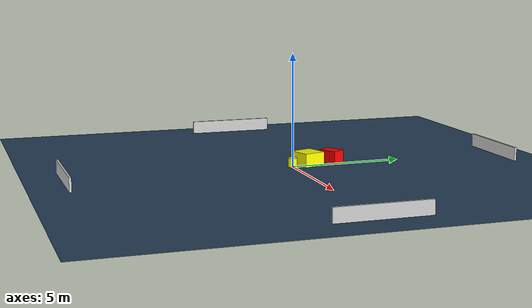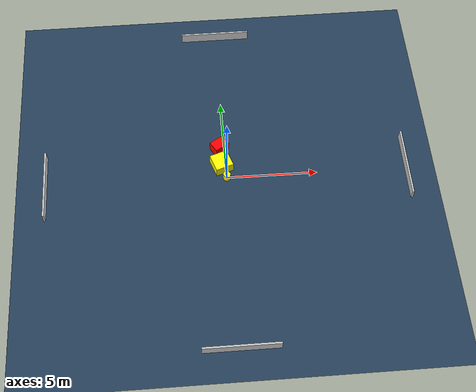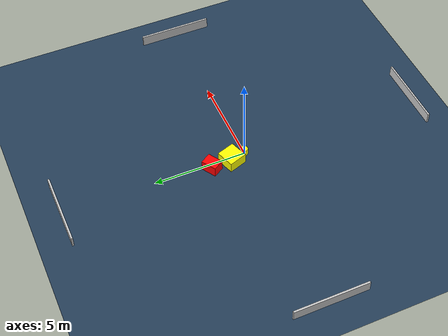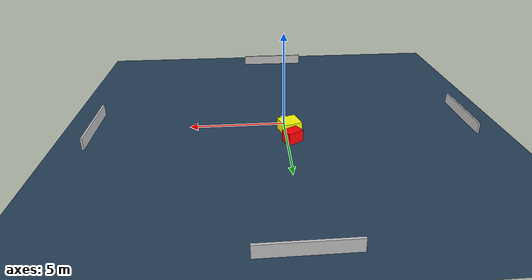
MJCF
<?xml version="1.0" ?>
<mujoco model="generated_environment">
  <option timestep="0.01" integrator="RK4" cone="elliptic"/>
  <default>
    <geom density="1"/>
  </default>
  <asset>
    <texture builtin="gradient" height="3072" name="skybox" rgb1="0.3 0.5 0.7" rgb2="0 0 0" type="skybox" width="512"/>
    <texture builtin="checker" height="300" name="groundplane" rgb1="0.2 0.3 0.4" rgb2="0.1 0.2 0.3" type="2d" width="300"/>
    <material name="groundplane" reflectance="0.2" texrepeat="5 5" texture="groundplane"/>
  </asset>
  <worldbody>
    <light dir="0 0 -1" directional="true" pos="0 0 1.5"/>
    <geom condim="3" friction="0.5 0.005 0.001" material="groundplane" name="floor" pos="0 0 0" size="0 0 0.05" type="plane"/>
    <body name="walls">
      <geom name="wall_1" condim="4" pos="-10.0 0.0 0.3" rgba="0.800000011920929 0.800000011920929 0.800000011920929 1.0" size="0.05 2.0 0.3" type="box"/>
      <geom name="wall_2" condim="4" pos="10.0 0.0 0.3" rgba="0.800000011920929 0.800000011920929 0.800000011920929 1.0" size="0.05 2.0 0.3" type="box"/>
      <geom name="wall_3" condim="4" pos="0.0 -10.0 0.3" rgba="0.800000011920929 0.800000011920929 0.800000011920929 1.0" size="2.0 0.05 0.3" type="box"/>
      <geom name="wall_4" condim="4" pos="0.0 10.0 0.3" rgba="0.800000011920929 0.800000011920929 0.800000011920929 1.0" size="2.0 0.05 0.3" type="box"/>
    </body>
    <body name="robot">
      <joint name="joint_x" type="slide" pos="0 0 0" axis="1 0 0"/>
      <joint name="joint_y" type="slide" pos="0 0 0" axis="0 1 0"/>
      <geom name="robot" type="cylinder" pos="0.0 0.0 0.2" size="0.2 0.2 0.0" mass="5.0" friction="1.0 0.005 0.0001" condim="4" rgba="1.0 1.0 0.0 1.0"/>
    </body>
    <body name="obstacle_1_movable">
      <geom name="obstacle_1_movable" condim="4" pos="-0.23681922283856646 0.8100517410855328 0.3" euler="0 0 108.65598648705627" friction="0.0 0.005 0.001" rgba="1.0 1.0 0.0 1.0" size="0.5020506997287375 0.5065368838347863 0.3" type="box" mass="0.1"/>
      <joint type="free"/>
    </body>
    <body name="obstacle_2_static">
      <geom name="obstacle_2_static" condim="4" pos="-0.28640804725014746 1.9451049858491525 0.3" euler="0 0 121.83614173911674" friction="0.0 0.005 0.001" rgba="1.0 0.0 0.0 1.0" size="0.3158901791980431 0.4249157547085335 0.3" type="box"/>
    </body>
  </worldbody>
  <actuator>
    <motor name="actuator_x" joint="joint_x" gear="1" ctrlrange="-1 1"/>
    <motor name="actuator_y" joint="joint_y" gear="1" ctrlrange="-1 1"/>
  </actuator>
</mujoco>
